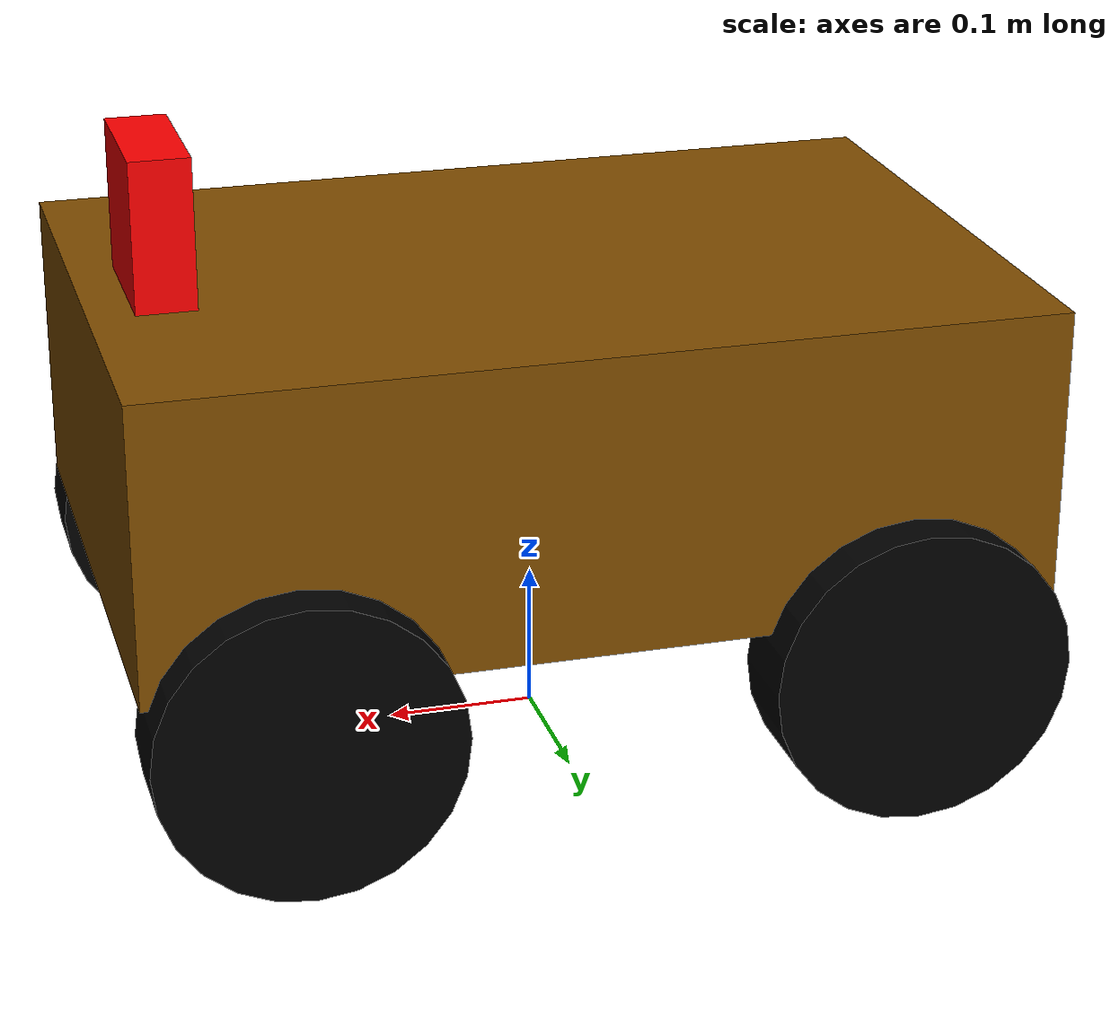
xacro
<?xml version="1.0"?>
<robot xmlns:xacro="http://www.ros.org/wiki/xacro" name="robot_car">

                <!-- Macros for inertia matrix -->
        <xacro:macro name="sphere_inertial_matrix" params="m r">
                <inertial>
                <mass value="${m}" />
                <inertia ixx="${2*m*r*r/5}" ixy="0" ixz="0"
                        iyy="${2*m*r*r/5}" iyz="0"
                        izz="${2*m*r*r/5}" />
                </inertial>
        </xacro:macro>

        <xacro:macro name="cylinder_inertial_matrix" params="m r h">
                <inertial>
                <mass value="${m}" />
                <inertia ixx="${m*(3*r*r+h*h)/12}" ixy = "0" ixz = "0"
                        iyy="${m*(3*r*r+h*h)/12}" iyz = "0"
                        izz="${m*r*r/2}" />
                </inertial>
        </xacro:macro>

        <xacro:macro name="Box_inertial_matrix" params="m l w h">
        <inertial>
                <mass value="${m}" />
                <inertia ixx="${m*(h*h + l*l)/12}" ixy = "0" ixz = "0"
                        iyy="${m*(w*w + l*l)/12}" iyz= "0"
                        izz="${m*(w*w + h*h)/12}" />
        </inertial>
        </xacro:macro>

        <!-- robot base -->
        <xacro:property name="M_PI" value="3.14159265358979323846" />
        <material name="black">
                <color rgba="0.0 0.0 0.0 1.0" />
        </material>

        <xacro:property name="base_footprint_radius" value="0.001" />
        <xacro:property name="base_link_l" value="0.6" />
        <xacro:property name="base_link_w" value="0.4" />
        <xacro:property name="base_link_h" value="0.2" />
        <xacro:property name="earth_space" value="0.13" />
        <xacro:property name="base_link_m" value="10.0" />

        <link name="base_footprint">
                <visual>
                        <geometry>
                                <sphere radius="${base_footprint_radius}" />
                        </geometry>
                </visual>
        </link>

        <link name="base_link">
                <xacro:Box_inertial_matrix m="${base_link_m}" l="${base_link_l}" w="${base_link_w}" h="${base_link_h}" />
                <visual>
                        <origin xyz="0.0 0.0 0.0" rpy="0.0 0.0 0.0"/>
                        <geometry>
                                <box size="${base_link_l} ${base_link_w} ${base_link_h}" />
                        </geometry>
                        <material name="yellow">
                                <color rgba="0.5 0.3 0.0 1.0" />
                        </material>
                </visual>
                <collision>
                        <origin xyz="0.0 0.0 0.0" rpy="0.0 0.0 0.0"/>
                        <geometry>
                                <box size="${base_link_l} ${base_link_w} ${base_link_h}" />
                        </geometry>
                </collision>
        </link>

        <joint name="base_footprint2base_link" type="fixed">
                <parent link="base_footprint" />
                <child link="base_link" />
                <origin xyz="0.0 0.0 ${earth_space+base_link_h/2}" rpy="0.0 0.0 0.0" />
        </joint>

        <gazebo reference="base_link">
                <material>Gazebo/Yellow</material>
        </gazebo>

        <link name="box_link">
                <visual name="">
                        <origin xyz="0.0 0.0 0.0" rpy="0.0 0.0 0.0"/>
                        <geometry>
                                <box size="0.04 0.1 0.1"/>
                        </geometry>
                        <material name="">
                                <color rgba="1.0 0.0 0.0 1.0"/>
                                <texture filename=""/>
                        </material>
                </visual>
        </link>

        <joint name="box_joint" type="fixed">
                <origin xyz="0.25 0.0 ${base_link_h/2+0.05}" rpy="0.0 0.0 0.0"/>
                <parent link="base_link"/>
                <child link="box_link"/>
                <axis xyz="0.0 0.0 0.0"/>
        </joint>

        <!-- Wheels -->
        <xacro:property name="wheel_radius" value="0.1" />
        <xacro:property name="wheel_length" value="0.06" />
        <xacro:property name="wheel_m" value="1" />

        <link name="fl_wheel_link">
                <visual name="">
                        <origin xyz="0.0 0.0 0.0" rpy="${M_PI / 2} 0.0 0.0"/>
                        <geometry>
                                <cylinder radius="${wheel_radius}" length="${wheel_length}" />
                        </geometry>
                        <material name="black" />
                </visual>
                <collision>
                        <origin xyz="0.0 0.0 0.0" rpy="${M_PI / 2} 0.0 0.0"/>
                        <geometry>
                                <cylinder radius="${wheel_radius}" length="${wheel_length}" />
                        </geometry>
                </collision>
                <xacro:cylinder_inertial_matrix m="${wheel_m}" r="${wheel_radius}" h="${wheel_length}" />
        </link>

        <joint name="fl_wheel_joint" type="continuous">
                <origin xyz="${base_link_l/2-wheel_radius} ${base_link_w/2} ${-(earth_space + base_link_h / 2 - wheel_radius)}" />
                <parent link="base_link"/>
                <child link="fl_wheel_link"/>
                <axis xyz="0.0 1.0 0.0"/>
        </joint>

        <link name="fr_wheel_link">
                <visual name="">
                        <origin xyz="0.0 0.0 0.0" rpy="${M_PI / 2} 0.0 0.0"/>
                        <geometry>
                                <cylinder radius="${wheel_radius}" length="${wheel_length}" />
                        </geometry>
                        <material name="black" />
                </visual>
                <collision>
                        <origin xyz="0.0 0.0 0.0" rpy="${M_PI / 2} 0.0 0.0"/>
                        <geometry>
                                <cylinder radius="${wheel_radius}" length="${wheel_length}" />
                        </geometry>
                </collision>
                <xacro:cylinder_inertial_matrix m="${wheel_m}" r="${wheel_radius}" h="${wheel_length}" />
        </link>

        <joint name="fr_wheel_joint" type="continuous">
                <origin xyz="${base_link_l/2-wheel_radius} ${-base_link_w/2} ${-(earth_space + base_link_h / 2 - wheel_radius)}" />
                <parent link="base_link"/>
                <child link="fr_wheel_link"/>
                <axis xyz="0.0 1.0 0.0"/>
        </joint>

        <link name="bl_wheel_link">
                <visual name="">
                        <origin xyz="0.0 0.0 0.0" rpy="${M_PI / 2} 0.0 0.0"/>
                        <geometry>
                                <cylinder radius="${wheel_radius}" length="${wheel_length}" />
                        </geometry>
                        <material name="black" />
                </visual>
                <collision>
                        <origin xyz="0.0 0.0 0.0" rpy="${M_PI / 2} 0.0 0.0"/>
                        <geometry>
                                <cylinder radius="${wheel_radius}" length="${wheel_length}" />
                        </geometry>
                </collision>
                <xacro:cylinder_inertial_matrix m="${wheel_m}" r="${wheel_radius}" h="${wheel_length}" />
        </link>

        <joint name="bl_wheel_joint" type="continuous">
                <origin xyz="${-base_link_l/2+wheel_radius} ${base_link_w/2} ${-(earth_space + base_link_h / 2 - wheel_radius)}" />
                <parent link="base_link"/>
                <child link="bl_wheel_link"/>
                <axis xyz="0.0 1.0 0.0"/>
        </joint>

        <link name="br_wheel_link">
                <visual name="">
                        <origin xyz="0.0 0.0 0.0" rpy="${M_PI / 2} 0.0 0.0"/>
                        <geometry>
                                <cylinder radius="${wheel_radius}" length="${wheel_length}" />
                        </geometry>
                        <material name="black" />
                </visual>
                <collision>
                        <origin xyz="0.0 0.0 0.0" rpy="${M_PI / 2} 0.0 0.0"/>
                        <geometry>
                                <cylinder radius="${wheel_radius}" length="${wheel_length}" />
                        </geometry>
                </collision>
                <xacro:cylinder_inertial_matrix m="${wheel_m}" r="${wheel_radius}" h="${wheel_length}" />
        </link>

        <joint name="br_wheel_joint" type="continuous">
                <origin xyz="${-base_link_l/2+wheel_radius} ${-base_link_w/2} ${-(earth_space + base_link_h / 2 - wheel_radius)}" />
                <parent link="base_link"/>
                <child link="br_wheel_link"/>
                <axis xyz="0.0 1.0 0.0"/>
        </joint>

        <gazebo reference="fl_wheel_link">
                <material>Gazebo/Red</material>
                <selfCollide>false</selfCollide>
                <mu1>10000000</mu1>
                <mu2>10000000</mu2>
                <kp>10000000</kp>
                <kd>1</kd>
        </gazebo>
        <gazebo reference="fr_wheel_link">
                <material>Gazebo/Red</material>
                <selfCollide>false</selfCollide>
                <mu1>10000000</mu1>
                <mu2>10000000</mu2>
                <kp>10000000</kp>
                <kd>1</kd>
        </gazebo>
        <gazebo reference="bl_wheel_link">
                <material>Gazebo/Red</material>
                <selfCollide>false</selfCollide>
                <mu1>10000000</mu1>
                <mu2>10000000</mu2>
                <kp>10000000</kp>
                <kd>1</kd>
        </gazebo>
        <gazebo reference="br_wheel_link">
                <material>Gazebo/Red</material>
                <selfCollide>false</selfCollide>
                <mu1>10000000</mu1>
                <mu2>10000000</mu2>
                <kp>10000000</kp>
                <kd>1</kd>
        </gazebo>

        <!-- Motion Transmission -->
        <xacro:macro name="joint_trans" params="joint_name">
                <transmission name="${joint_name}_trans">
                <type>transmission_interface/SimpleTransmission</type>
                <joint name="${joint_name}">
                        <hardwareInterface>hardware_interface/VelocityJointInterface</hardwareInterface>
                </joint>
                <actuator name="${joint_name}_motor">
                        <hardwareInterface>hardware_interface/VelocityJointInterface</hardwareInterface>
                        <mechanicalReduction>1</mechanicalReduction>
                </actuator>
                </transmission>
        </xacro:macro>

        <xacro:joint_trans joint_name="fr_wheel_joint"/>
        <xacro:joint_trans joint_name="fl_wheel_joint"/>
        <xacro:joint_trans joint_name="bl_wheel_joint"/>
        <xacro:joint_trans joint_name="br_wheel_joint"/>

        <gazebo>

                <plugin name="skid_steer_drive_controller" filename="libgazebo_ros_skid_steer_drive.so">
                        <updateRate>100.0</updateRate>
                        <robotNamespace>/</robotNamespace>
                        <publishTf>1</publishTf>
                        <leftFrontJoint>fl_wheel_joint</leftFrontJoint>
                        <rightFrontJoint>fr_wheel_joint</rightFrontJoint>
                        <leftRearJoint>bl_wheel_joint</leftRearJoint>
                        <rightRearJoint>br_wheel_joint</rightRearJoint>
                        <wheelSeparation>${base_link_w}</wheelSeparation>
                        <wheelDiameter>${wheel_radius * 2}</wheelDiameter>
                        <torque>100</torque>
                        <topicName>cmd_vel</topicName>
                        <broadcastTF>true</broadcastTF>
                        <commandTopic>cmd_vel</commandTopic>
                        <odometryFrame>odom</odometryFrame>
                        <odometryTopic>odom</odometryTopic>
                        <robotBaseFrame>base_footprint</robotBaseFrame>
                        <publishOdomTF>false</publishOdomTF>
                        <covariance_x>0.0001</covariance_x>
                        <covariance_y>0.0001</covariance_y>
                        <covariance_yaw>0.01</covariance_yaw>
                </plugin>
                <plugin name="p3d_base_controller" filename="libgazebo_ros_p3d.so">
                        <alwaysOn>true</alwaysOn>
                        <updateRate>100.0</updateRate>
                        <bodyName>base_footprint</bodyName>
                        <topicName>base_pose_truth</topicName>
                        <gaussianNoise>0.01</gaussianNoise>
                        <frameName>world</frameName>
                        <xyzOffsets>0 0 0</xyzOffsets>
                        <rpyOffsets>0 0 0</rpyOffsets>
                </plugin>
        </gazebo>

</robot>
